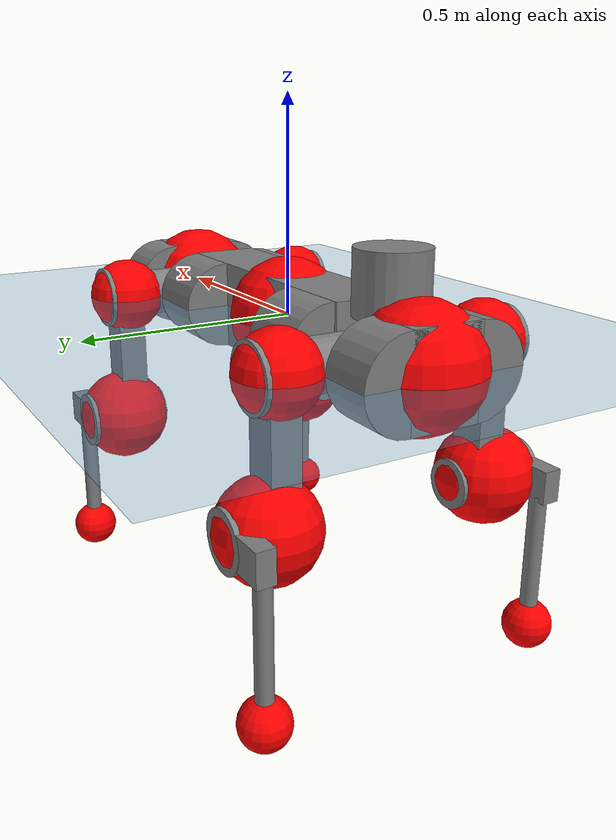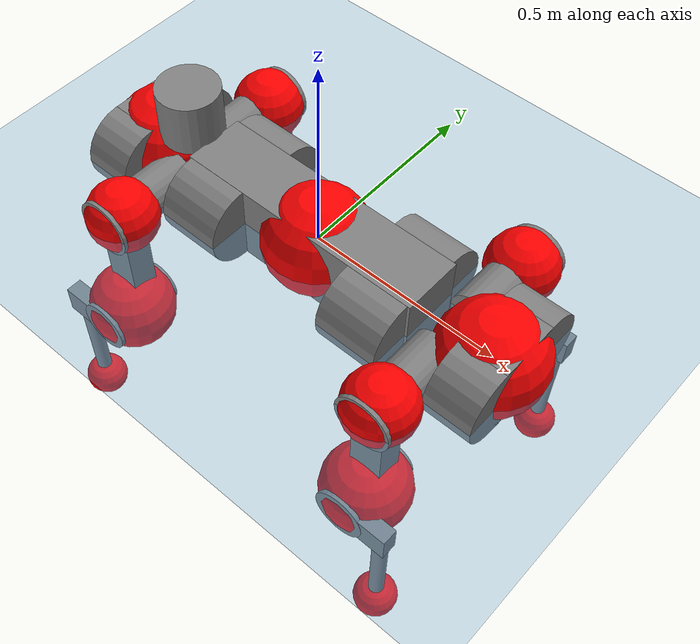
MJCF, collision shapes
<mujoco model="anymal_c">
  <compiler angle="radian" assetdir="assets" balanceinertia="true" inertiafromgeom="false"/>

  <option timestep="0.005" density="1.2" viscosity="2e-05"/>

  <size nkey="1"/>

  <visual>
    <quality shadowsize="8192"/>
    <map shadowclip="0.5"/>
  </visual>

  <default>
    <default class="/">
      <material specular="0" shininess="0.25"/>
      <geom contype="0" conaffinity="0" group="1" solref="-1000 -80"/>
      <site size="0.01 0.005 0.005" group="5"/>
      <general forcelimited="true" forcerange="-80 80" biastype="affine" gainprm="80" biasprm="0 -80 -2"/>
      <default class="anymal_c">
        <joint armature="0.01" damping="0.01" frictionloss="0.1"/>
        <default class="visual">
          <geom type="mesh" group="2"/>
          <default class="visual_zflip"/>
        </default>
        <default class="collision">
          <geom type="cylinder" group="3"/>
          <default class="foot">
            <geom size="0.03 0 0" type="sphere" condim="6" priority="1" friction="0.8 0.02 0.01" solimp="0.015 1 0.03"/>
          </default>
        </default>
      </default>
      <default class="reward_collision_sphere">
        <geom group="5" rgba="1 0 0 1"/>
      </default>
    </default>
  </default>

  <asset>
    <texture type="skybox" colorspace="auto" name="//unnamed_texture_0" builtin="gradient" rgb1="0.95 0.95 0.95" rgb2="0.95 0.95 0.95" width="100" height="600"/>
    <texture type="2d" colorspace="auto" name="texplane" builtin="checker" rgb1="0.345 0.575 0.748" rgb2="0.345 0.575 0.748" markrgb="1 1 1" width="512" height="512"/>
    <texture type="2d" colorspace="linear" name="base" file="base.png"/>
    <texture type="2d" colorspace="linear" name="top_shell" file="top_shell.png"/>
    <texture type="2d" colorspace="linear" name="bottom_shell" file="bottom_shell.png"/>
    <texture type="2d" colorspace="linear" name="remote" file="remote.png"/>
    <texture type="2d" colorspace="linear" name="hatch" file="hatch.png"/>
    <texture type="2d" colorspace="linear" name="handle" file="handle.png"/>
    <texture type="2d" colorspace="linear" name="face" file="face.png"/>
    <texture type="2d" colorspace="linear" name="battery" file="battery.png"/>
    <texture type="2d" colorspace="linear" name="lidar_cage" file="lidar_cage.png"/>
    <texture type="2d" colorspace="linear" name="depth_camera" file="depth_camera.png"/>
    <texture type="2d" colorspace="linear" name="wide_angle_camera" file="wide_angle_camera.png"/>
    <texture type="2d" colorspace="linear" name="lidar" file="lidar.png"/>
    <texture type="2d" colorspace="linear" name="drive" file="drive.png"/>
    <texture type="2d" colorspace="linear" name="hip_l" file="hip_l.png"/>
    <texture type="2d" colorspace="linear" name="shank_l" file="shank_l.png"/>
    <texture type="2d" colorspace="linear" name="foot" file="foot.png"/>
    <texture type="2d" colorspace="linear" name="thigh" file="thigh.png"/>
    <texture type="2d" colorspace="linear" name="shank_r" file="shank_r.png"/>
    <texture type="2d" colorspace="linear" name="hip_r" file="hip_r.png"/>
    <material name="MatPlane" class="/" texture="texplane" texuniform="true" texrepeat="2 2" specular="0.9" shininess="0.5"/>
    <material name="black_plastic" class="/" rgba="0.007 0.007 0.007 1"/>
    <material name="green" class="/" rgba="0.052 0.178 0.033 1"/>
    <material name="red" class="/" rgba="0.178 0.006 0.005 1"/>
    <material name="yellow" class="/" rgba="0.178 0.119 0.006 1"/>
    <material name="lwl" class="/" rgba="0.8 0.8 0.8 1"/>
    <material name="base" class="/" texture="base"/>
    <material name="top_shell" class="/" texture="top_shell"/>
    <material name="bottom_shell" class="/" texture="bottom_shell"/>
    <material name="hip_l" class="/" texture="hip_l"/>
    <material name="thigh" class="/" texture="thigh"/>
    <material name="shank_l" class="/" texture="shank_l"/>
    <material name="foot" class="/" texture="foot"/>
    <material name="hip_r" class="/" texture="hip_r"/>
    <material name="shank" class="/" texture="shank_r"/>
    <material name="hatch" class="/" texture="hatch"/>
    <material name="remote" class="/" texture="remote"/>
    <material name="handle" class="/" texture="handle"/>
    <material name="face" class="/" texture="face"/>
    <material name="depth_camera" class="/" texture="depth_camera"/>
    <material name="wide_angle_camera" class="/" texture="wide_angle_camera"/>
    <material name="battery" class="/" texture="battery"/>
    <material name="lidar_cage" class="/" texture="lidar_cage"/>
    <material name="lidar" class="/" texture="lidar"/>
    <material name="drive" class="/" texture="drive"/>
    <mesh name="base_0" class="/" file="base_0.obj"/>
    <mesh name="base_1" class="/" file="base_1.obj"/>
    <mesh name="base_2" class="/" file="base_2.obj"/>
    <mesh name="base_3" class="/" file="base_3.obj"/>
    <mesh name="base_4" class="/" file="base_4.obj"/>
    <mesh name="base_5" class="/" file="base_5.obj"/>
    <mesh name="top_shell" class="/" file="top_shell.obj"/>
    <mesh name="bottom_shell" class="/" file="bottom_shell.obj"/>
    <mesh name="remote" class="/" file="remote.obj"/>
    <mesh name="handle" class="/" file="handle.obj"/>
    <mesh name="face" class="/" file="face.obj"/>
    <mesh name="wide_angle_camera" class="/" file="wide_angle_camera.obj"/>
    <mesh name="depth_camera" class="/" file="depth_camera.obj"/>
    <mesh name="battery" class="/" file="battery.obj"/>
    <mesh name="lidar_cage" class="/" file="lidar_cage.obj"/>
    <mesh name="lidar" class="/" file="lidar.obj"/>
    <mesh name="drive" class="/" file="drive.obj"/>
    <mesh name="hip_l" class="/" file="hip_l.obj"/>
    <mesh name="thigh" class="/" file="thigh.obj"/>
    <mesh name="shank_l" class="/" file="shank_l.obj"/>
    <mesh name="foot" class="/" file="foot.obj"/>
    <mesh name="hip_r" class="/" file="hip_r.obj"/>
    <mesh name="hatch" class="/" file="hatch.obj"/>
    <mesh name="shank_r" class="/" file="shank_r.obj"/>
  </asset>

  <worldbody>
    <geom name="floor" class="/" size="100 100 0.125" type="plane" group="0" material="MatPlane"/>
    <light name="toplight_shadow" class="/" pos="0 0 5" dir="0.0990148 0.0990148 -0.990148" type="directional" ambient="0.04 0.04 0.04" diffuse="0.55 0.55 0.55" specular="0.12 0.12 0.12"/>
    <light name="toplight_fill" class="/" pos="0 0 5" dir="0.0990148 0.0990148 -0.990148" type="directional" castshadow="false" ambient="0.04 0.04 0.04" diffuse="0.3 0.3 0.3" specular="0.08 0.08 0.08"/>
    <body name="trunk" childclass="anymal_c" pos="1.15054e-05 -0.000984615 -6.55737e-05" quat="1 3.96326e-05 -4.91478e-05 -6.87622e-05">
      <inertial pos="0.0048317 -0.000462248 0.053294" quat="0.493927 0.495234 0.500908 0.509775" mass="28.0359" diaginertia="1.0332 1.40058 0.379454"/>
      <joint name="//unnamed_joint_0" type="free" armature="0" damping="0" frictionloss="0"/>
      <geom name="//unnamed_geom_1" class="visual" material="green" mesh="base_0"/>
      <geom name="//unnamed_geom_2" class="visual" material="yellow" mesh="base_1"/>
      <geom name="//unnamed_geom_3" class="visual" material="red" mesh="base_2"/>
      <geom name="//unnamed_geom_4" class="visual" material="black_plastic" mesh="base_3"/>
      <geom name="//unnamed_geom_5" class="visual" material="lwl" mesh="base_4"/>
      <geom name="//unnamed_geom_6" class="visual" material="base" mesh="base_5"/>
      <geom name="trunk_1" class="collision" size="0.330217 0.0797075 0.102481" type="box"/>
      <geom name="trunk_2" class="collision" size="0.102481 0.0825542" pos="0.240632 0.083426 0" quat="0.707107 0 0.707107 0"/>
      <geom name="trunk_3" class="collision" size="0.102481 0.0825542" pos="-0.240632 0.083426 0" quat="0.707107 0 0.707107 0"/>
      <geom name="trunk_4" class="collision" size="0.102481 0.0825542" pos="0.240632 -0.083426 0" quat="0.707107 0 0.707107 0"/>
      <geom name="trunk_5" class="collision" size="0.102481 0.0825542" pos="-0.240632 -0.083426 0" quat="0.707107 0 0.707107 0"/>
      <geom name="//unnamed_geom_12" class="visual" material="top_shell" mesh="top_shell"/>
      <geom name="//unnamed_geom_13" class="visual" material="bottom_shell" mesh="bottom_shell"/>
      <geom name="//unnamed_geom_14" class="visual" material="remote" mesh="remote"/>
      <geom name="//unnamed_geom_15" class="visual" material="handle" mesh="handle"/>
      <geom name="//unnamed_geom_16" class="visual" pos="0.458584 0 0" quat="1 0 0 0" material="face" mesh="face"/>
      <geom name="trunk_6" class="collision" size="0.0626273 0.0797075 0.102481" pos="0.519434 0 0" type="box"/>
      <geom name="//unnamed_geom_18" class="collision" size="0.102481 0.0626273" pos="0.519434 0.083426 0" quat="0.707107 0 0.707107 0"/>
      <geom name="//unnamed_geom_19" class="collision" size="0.102481 0.0626273" pos="0.519434 -0.083426 0" quat="0.707107 0 0.707107 0"/>
      <geom name="//unnamed_geom_20" class="visual" pos="0.510749 0 -0.0327297" quat="0.965926 0 0.258819 0" material="depth_camera" mesh="depth_camera"/>
      <geom name="//unnamed_geom_21" class="visual" pos="0.56756 0 0.0167347" material="wide_angle_camera" mesh="wide_angle_camera"/>
      <geom name="//unnamed_geom_22" class="visual_zflip" pos="-0.458584 0 0" quat="0 0 0 1" material="face" mesh="face"/>
      <geom name="trunk_7" class="collision" size="0.0626273 0.0797075 0.102481" pos="-0.519434 0 0" quat="0 0 0 1" type="box"/>
      <geom name="//unnamed_geom_24" class="collision" size="0.102481 0.0626273" pos="-0.519434 -0.083426 0" quat="0 -0.707107 0 0.707107"/>
      <geom name="//unnamed_geom_25" class="collision" size="0.102481 0.0626273" pos="-0.519434 0.083426 0" quat="0 -0.707107 0 0.707107"/>
      <geom name="//unnamed_geom_26" class="visual" pos="-0.510749 0 -0.0327297" quat="0 -0.258819 0 0.965926" material="depth_camera" mesh="depth_camera"/>
      <geom name="//unnamed_geom_27" class="visual_zflip" pos="-0.56756 0 0.0167347" quat="0 0 0 1" material="wide_angle_camera" mesh="wide_angle_camera"/>
      <geom name="//unnamed_geom_28" class="visual" material="battery" mesh="battery"/>
      <geom name="//unnamed_geom_29" class="visual" pos="0 0.0922467 0.0323869" quat="0.683013 -0.183013 0.183013 0.683013" material="depth_camera" mesh="depth_camera"/>
      <geom name="//unnamed_geom_30" class="visual" pos="0 -0.0922467 0.0323869" quat="0.683013 0.183013 0.183013 -0.683013" material="depth_camera" mesh="depth_camera"/>
      <geom name="//unnamed_geom_31" class="visual" pos="-0.402713 0 0.0821643" quat="1 0 0 0" material="lidar_cage" mesh="lidar_cage"/>
      <geom name="trunk_8" class="collision" size="0.0797075 0.0683207" pos="-0.402713 0 0.149237"/>
      <geom name="//unnamed_geom_33" class="visual" pos="-0.402713 3.35691e-05 0.158963" quat="0.707107 0 0 -0.707107" material="lidar" mesh="lidar"/>
      <geom name="//unnamed_geom_34" class="visual" pos="0.331796 0.123921 1.27511e-09" quat="0.258819 0.965926 0 0" material="drive" mesh="drive"/>
      <geom name="//unnamed_geom_35" class="visual" pos="0.331796 -0.123921 -1.27511e-09" quat="0.258819 -0.965926 0 0" material="drive" mesh="drive"/>
      <geom name="//unnamed_geom_36" class="visual" pos="-0.331796 0.123921 -1.27511e-09" quat="0 0 0.965926 -0.258819" material="drive" mesh="drive"/>
      <geom name="//unnamed_geom_37" class="visual" pos="-0.331796 -0.123921 1.27511e-09" quat="0 0 -0.965926 -0.258819" material="drive" mesh="drive"/>
      <geom name="//unnamed_geom_38" class="visual" pos="0.128337 0 0.0816053" quat="1 0 0 0" material="hatch" mesh="hatch"/>
      <geom name="//unnamed_geom_39" class="reward_collision_sphere" size="0.136641"/>
      <geom name="//unnamed_geom_40" class="reward_collision_sphere" size="0.136641" pos="0.49786 0 0"/>
      <geom name="//unnamed_geom_41" class="reward_collision_sphere" size="0.136641" pos="-0.49786 0 0"/>
      <site name="imu" pos="0.281227 0.0217655 0.0467613" size="0.0113868"/>
      <camera name="track" pos="0 -2.3836 0" quat="0.707107 0.707107 0 0" mode="trackcom"/>
      <camera name="ego_camera" pos="0.49786 0 -0.0447153" quat="-0.5 -0.5 0.5 0.5"/>
      <body name="LF_HIP" pos="0.333934 0.12181 -0.00041165" quat="0.258691 0.96596 0.000117155 -0.000323184">
        <inertial pos="0.0619183 -0.0178163 -0.00655296" quat="-0.127731 0.710418 -0.134521 0.678893" mass="4.10002" diaginertia="0.00971841 0.0118746 0.00567928"/>
        <joint name="LF_HAA" pos="0 0 0" axis="0.999993 0.000974718 -0.00370323" range="-0.768474 0.539086" armature="0.0117141" damping="0.00381935" frictionloss="0.1241"/>
        <geom name="//unnamed_geom_42" class="visual" pos="0 7.5009e-05 -1.23202e-05" quat="0.258819 -0.965926 0 0" material="hip_l" mesh="hip_l"/>
        <geom name="//unnamed_geom_43" class="visual" pos="0.0662707 -0.0813998 -0.0464494" quat="0.183013 -0.683013 0.683013 0.183013" material="drive" mesh="drive"/>
        <geom name="//unnamed_geom_44" class="collision" size="0.0569339 0.0797075" pos="0.0662707 -0.0142537 -0.00771897" quat="-0.353553 -0.612372 0.612372 -0.353553"/>
        <body name="LF_THIGH" pos="0.0666578 -0.0887247 -0.0485401" quat="0.183392 -0.683425 0.682512 0.182962">
          <inertial pos="0.0357034 0.00225312 -0.273614" quat="0.993167 -0.0052059 -0.0805647 0.0842751" mass="4.53317" diaginertia="0.049686 0.0714113 0.00700521"/>
          <joint name="LF_HFE" pos="0 0 0" axis="0.999993 -0.000279529 -0.00368231" stiffness="0.00549949" range="-3.09182 3.12288" armature="0.0117282" damping="0.0202339" frictionloss="0.129416"/>
          <geom name="//unnamed_geom_45" class="visual" pos="-0.00170002 -2.67884e-06 0" quat="0.707107 0 0 -0.707107" material="thigh" mesh="thigh"/>
          <geom name="//unnamed_geom_46" class="collision" size="0.0740141 0.0455472" pos="0.0442542 0 0" quat="0.5 0.5 -0.5 -0.5"/>
          <geom name="//unnamed_geom_47" class="collision" size="0.0427005 0.0341604 0.160911" pos="0.0331907 0 -0.157972" quat="0.707107 0 0 -0.707107" type="box"/>
          <geom name="//unnamed_geom_48" class="visual" pos="0.110967 0 -0.318596" quat="1 0 0 0" material="drive" mesh="drive"/>
          <geom name="//unnamed_geom_49" class="collision" size="0.0569339 0.0797075" pos="0.0335226 0 -0.318596" quat="0.707107 0 0.707107 0"/>
          <geom name="//unnamed_geom_50" class="reward_collision_sphere" size="0.0910943" pos="0.0276589 0 0"/>
          <body name="LF_SHANK" pos="0.108158 0.000758135 -0.321558" quat="0.999999 -0.000405009 0.000838727 0.000871898">
            <inertial pos="0.00800345 -0.073143 -0.0883913" quat="0.992909 -0.116084 -0.00123303 -0.0256039" mass="0.861278" diaginertia="0.0165854 0.0218494 0.00198608"/>
            <joint name="LF_KFE" pos="0 0 0" axis="0.999983 0.00058076 -0.00579475" stiffness="0.000482393" range="-3.10755 3.12847" armature="0.0102549" damping="0.00843814" frictionloss="0.111179"/>
            <geom name="//unnamed_geom_51" class="visual" pos="-0.000554341 -0.00295577 0" quat="0.707107 0 0 -0.707107" material="shank_l" mesh="shank_l"/>
            <geom name="LF_kfe_act" class="collision" size="0.0683207 0.0227736" pos="0.0221271 0 0" quat="0.5 0.5 -0.5 -0.5"/>
            <geom name="//unnamed_geom_53" class="collision" size="0.0654729 0.0384304 0.0216349" pos="0.0221271 -0.0685273 0" quat="0.5 0.5 -0.5 -0.5" type="box"/>
            <geom name="//unnamed_geom_54" class="visual" pos="0.0144381 -0.105771 -0.37781" quat="0.382683 0 0 -0.92388" material="foot" mesh="foot"/>
            <geom name="LF_calf" class="collision" size="0.0199269 0.160841" pos="0.0144379 -0.104819 -0.188905" quat="0.707107 0 0 -0.707107"/>
            <geom name="LF_foot" class="foot" size="0.0305362" pos="0.0144379 -0.104819 -0.352658" quat="0.707107 0 0 -0.707107"/>
            <geom name="//unnamed_geom_57" class="reward_collision_sphere" size="0.113868" pos="-0.0553178 0 0"/>
            <geom name="//unnamed_geom_58" class="reward_collision_sphere" size="0.0569339" pos="0.0144379 -0.104819 -0.352658"/>
            <site name="LF_foot" class="foot" pos="0.0144379 -0.104819 -0.352658" quat="0.707107 0 0 -0.707107" size="0.0113868"/>
          </body>
        </body>
      </body>
      <body name="RF_HIP" pos="0.331156 -0.125632 -0.00295281" quat="0.25881 -0.965928 5.09798e-05 -5.37242e-05">
        <inertial pos="0.0601538 0.0207104 -0.00726015" quat="0.138186 0.678752 0.12867 0.70968" mass="4.09753" diaginertia="0.00937931 0.0121674 0.0057826"/>
        <joint name="RF_HAA" pos="0 0 0" axis="0.999946 0.00883387 0.00556117" range="-0.499137 0.73702" armature="0.012768" damping="0.0240819" frictionloss="0.129015"/>
        <geom name="//unnamed_geom_59" class="visual" pos="0 -7.50084e-05 -1.23201e-05" quat="0.258819 0.965926 0 0" material="hip_r" mesh="hip_r"/>
        <geom name="//unnamed_geom_60" class="visual" pos="0.0662707 0.0813998 -0.0464494" quat="0.183013 0.683013 0.683013 -0.183013" material="drive" mesh="drive"/>
        <geom name="//unnamed_geom_61" class="collision" size="0.0569339 0.0797075" pos="0.0662707 0.0142537 -0.00771897" quat="-0.353553 0.612372 0.612372 0.353553"/>
        <body name="RF_THIGH" pos="0.0655173 0.0839034 -0.0442241" quat="0.181806 0.683731 0.682866 -0.182079">
          <inertial pos="0.0315563 0.00207393 -0.273804" quat="0.993094 -0.00744378 -0.0860551 0.0793973" mass="4.64591" diaginertia="0.0502646 0.0720768 0.00709532"/>
          <joint name="RF_HFE" pos="0 0 0" axis="0.999998 0.000770494 0.00208937" range="-3.12087 3.14416" armature="0.0115416" damping="0.0233896" frictionloss="0.11461"/>
          <geom name="//unnamed_geom_62" class="visual" pos="-0.00170002 -2.67884e-06 0" quat="0.707107 0 0 -0.707107" material="thigh" mesh="thigh"/>
          <geom name="//unnamed_geom_63" class="collision" size="0.0740141 0.0455472" pos="0.0442542 0 0" quat="0.5 0.5 0.5 0.5"/>
          <geom name="//unnamed_geom_64" class="collision" size="0.0427005 0.0341604 0.160911" pos="0.0331907 0 -0.157972" quat="0.707107 0 0 0.707107" type="box"/>
          <geom name="//unnamed_geom_65" class="visual" pos="0.110967 0 -0.318596" quat="1 0 0 0" material="drive" mesh="drive"/>
          <geom name="//unnamed_geom_66" class="collision" size="0.0569339 0.0797075" pos="0.0335226 0 -0.318596" quat="0.707107 0 0.707107 0"/>
          <geom name="//unnamed_geom_67" class="reward_collision_sphere" size="0.0910943" pos="0.0276589 0 0"/>
          <body name="RF_SHANK" pos="0.111741 0.000965099 -0.320643" quat="1 3.70891e-06 -2.82156e-05 -4.65203e-05">
            <inertial pos="0.00898377 0.0733183 -0.0883724" quat="0.992757 0.114718 0.00180673 0.0356479" mass="0.865302" diaginertia="0.0172115 0.0222683 0.00201177"/>
            <joint name="RF_KFE" pos="0 0 0" axis="0.999973 -0.00488523 0.00546673" range="-3.10024 3.13045" armature="0.010902" damping="0.00416682" frictionloss="0.112898"/>
            <geom name="//unnamed_geom_68" class="visual" pos="-0.000554338 0.00295577 0" quat="0.707107 0 0 0.707107" material="shank" mesh="shank_r"/>
            <geom name="RF_kfe_act" class="collision" size="0.0683207 0.0227736" pos="0.0221271 0 0" quat="0.5 0.5 0.5 0.5"/>
            <geom name="//unnamed_geom_70" class="collision" size="0.0654729 0.0384304 0.0216349" pos="0.0221271 0.0685273 0" quat="0.5 0.5 0.5 0.5" type="box"/>
            <geom name="//unnamed_geom_71" class="visual" pos="0.0144378 0.105771 -0.37781" quat="0.382683 0 0 0.92388" material="foot" mesh="foot"/>
            <geom name="RF_calf" class="collision" size="0.0199269 0.160841" pos="0.0144379 0.104819 -0.188905" quat="0.707107 0 0 0.707107"/>
            <geom name="RF_foot" class="foot" size="0.0267969" pos="0.0144379 0.104819 -0.352658" quat="0.707107 0 0 0.707107"/>
            <geom name="//unnamed_geom_74" class="reward_collision_sphere" size="0.113868" pos="-0.0553178 0 0"/>
            <geom name="//unnamed_geom_75" class="reward_collision_sphere" size="0.0569339" pos="0.0144379 0.104819 -0.352658"/>
            <site name="RF_foot" class="foot" pos="0.0144379 0.104819 -0.352658" quat="0.707107 0 0 0.707107" size="0.0113868"/>
          </body>
        </body>
      </body>
      <body name="LH_HIP" pos="-0.32972 0.124348 0.00385575" quat="-0.000983092 -0.000720514 0.965664 -0.259791">
        <inertial pos="0.0622997 0.0176379 -0.00686601" quat="0.141852 0.682674 0.135374 0.703923" mass="4.37377" diaginertia="0.0100874 0.0122113 0.00595873"/>
        <joint name="LH_HAA" pos="0 0 0" axis="0.999962 0.00339378 0.00803115" range="-0.459008 0.668563" armature="0.0117418" damping="0.00474467" frictionloss="0.123082"/>
        <geom name="//unnamed_geom_76" class="visual" pos="0 -7.50084e-05 -1.23201e-05" quat="-0.258819 -0.965926 0 0" material="hip_r" mesh="hip_r"/>
        <geom name="//unnamed_geom_77" class="visual" pos="0.0662707 0.0813998 -0.0464494" quat="0.183013 0.683013 0.683013 -0.183013" material="drive" mesh="drive"/>
        <geom name="//unnamed_geom_78" class="collision" size="0.0569339 0.0797075" pos="0.0662707 0.0142537 -0.00771897" quat="-0.353553 0.612372 0.612372 0.353553"/>
        <body name="LH_THIGH" pos="0.063838 0.0878763 -0.0449355" quat="0.182693 0.683937 0.682213 -0.182865">
          <inertial pos="0.0338014 -0.000485992 -0.273364" quat="0.993082 -0.0079895 -0.0864152 0.0791047" mass="4.54919" diaginertia="0.0503488 0.0768154 0.00755415"/>
          <joint name="LH_HFE" pos="0 0 0" axis="1 0.00012203 0.000336489" range="-3.16047 3.18223" armature="0.00996066" damping="0.00598905" frictionloss="0.113708"/>
          <geom name="//unnamed_geom_79" class="visual" pos="-0.00170002 -2.67884e-06 0" quat="0.707107 0 0 -0.707107" material="thigh" mesh="thigh"/>
          <geom name="//unnamed_geom_80" class="collision" size="0.0740141 0.0455472" pos="0.0442542 0 0" quat="0.5 0.5 -0.5 -0.5"/>
          <geom name="//unnamed_geom_81" class="collision" size="0.0427005 0.0341604 0.160911" pos="0.0331907 0 -0.157972" quat="0.707107 0 0 -0.707107" type="box"/>
          <geom name="//unnamed_geom_82" class="visual" pos="0.110967 0 -0.318596" quat="1 0 0 0" material="drive" mesh="drive"/>
          <geom name="//unnamed_geom_83" class="collision" size="0.0569339 0.0797075" pos="0.0335226 0 -0.318596" quat="0.707107 0 0.707107 0"/>
          <geom name="//unnamed_geom_84" class="reward_collision_sphere" size="0.0910943" pos="0.0276589 0 0"/>
          <body name="LH_SHANK" pos="0.108986 0.00253119 -0.315798" quat="0.999999 0.000761346 0.000800643 -0.000554535">
            <inertial pos="0.00615999 0.072779 -0.0911696" quat="0.993018 0.114625 -0.00355519 0.0276218" mass="0.91647" diaginertia="0.0173028 0.0230126 0.00201846"/>
            <joint name="LH_KFE" pos="0 0 0" axis="0.999958 -0.00215223 -0.00887053" range="-3.17843 3.11795" armature="0.0107769" damping="0" frictionloss="0.118845"/>
            <geom name="//unnamed_geom_85" class="visual" pos="-0.000554338 0.00295577 0" quat="-0.707107 0 0 -0.707107" material="shank" mesh="shank_r"/>
            <geom name="LH_kfe_act" class="collision" size="0.0683207 0.0227736" pos="0.0221271 0 0" quat="0.5 0.5 -0.5 -0.5"/>
            <geom name="//unnamed_geom_87" class="collision" size="0.0654729 0.0384304 0.0216349" pos="0.0221271 0.0685273 0" quat="0.5 0.5 -0.5 -0.5" type="box"/>
            <geom name="//unnamed_geom_88" class="visual" pos="0.0144378 0.105771 -0.37781" quat="-0.382683 0 0 -0.92388" material="foot" mesh="foot"/>
            <geom name="LH_calf" class="collision" size="0.0199269 0.160841" pos="0.0144379 0.104819 -0.188905" quat="0.707107 0 0 -0.707107"/>
            <geom name="LH_foot" class="foot" size="0.0384085" pos="0.0144379 0.104819 -0.352658" quat="0.707107 0 0 -0.707107"/>
            <geom name="//unnamed_geom_91" class="reward_collision_sphere" size="0.113868" pos="-0.0553178 0 0"/>
            <geom name="//unnamed_geom_92" class="reward_collision_sphere" size="0.0569339" pos="0.0144379 0.104819 -0.352658"/>
            <site name="LH_foot" class="foot" pos="0.0144379 0.104819 -0.352658" quat="0.707107 0 0 -0.707107" size="0.0113868"/>
          </body>
        </body>
      </body>
      <body name="RH_HIP" pos="-0.329352 -0.126405 -0.00155394" quat="1.77334e-05 -0.000238207 -0.965934 -0.258787">
        <inertial pos="0.064973 -0.0180552 -0.0112696" quat="-0.132524 0.703227 -0.14034 0.684261" mass="4.1814" diaginertia="0.0101372 0.0125838 0.00585419"/>
        <joint name="RH_HAA" pos="0 0 0" axis="0.999999 -0.00107191 -0.000306232" stiffness="0.00901948" range="-0.738957 0.505445" armature="0.0113738" damping="0.00440226" frictionloss="0.115286"/>
        <geom name="//unnamed_geom_93" class="visual" pos="0 7.5009e-05 -1.23202e-05" quat="-0.258819 0.965926 0 0" material="hip_l" mesh="hip_l"/>
        <geom name="//unnamed_geom_94" class="visual" pos="0.0662707 -0.0813998 -0.0464494" quat="-0.183013 0.683013 -0.683013 -0.183013" material="drive" mesh="drive"/>
        <geom name="//unnamed_geom_95" class="collision" size="0.0569339 0.0797075" pos="0.0662707 -0.0142537 -0.00771897" quat="0.353553 0.612372 -0.612372 0.353553"/>
        <body name="RH_THIGH" pos="0.0650158 -0.0853131 -0.045704" quat="-0.18273 0.68293 -0.683143 -0.183117">
          <inertial pos="0.0343306 0.000625043 -0.272339" quat="0.99258 -0.0125284 -0.0807569 0.0900372" mass="4.36296" diaginertia="0.048652 0.0690608 0.00711426"/>
          <joint name="RH_HFE" pos="0 0 0" axis="0.999996 -0.00260895 0.00129059" range="-3.11097 3.19084" armature="0.0118098" damping="0.00537323" frictionloss="0.12197"/>
          <geom name="//unnamed_geom_96" class="visual" pos="-0.00170002 -2.67884e-06 0" quat="0.707107 0 0 -0.707107" material="thigh" mesh="thigh"/>
          <geom name="//unnamed_geom_97" class="collision" size="0.0740141 0.0455472" pos="0.0442542 0 0" quat="0.5 0.5 0.5 0.5"/>
          <geom name="//unnamed_geom_98" class="collision" size="0.0427005 0.0341604 0.160911" pos="0.0331907 0 -0.157972" quat="0.707107 0 0 0.707107" type="box"/>
          <geom name="//unnamed_geom_99" class="visual" pos="0.110967 0 -0.318596" quat="1 0 0 0" material="drive" mesh="drive"/>
          <geom name="//unnamed_geom_100" class="collision" size="0.0569339 0.0797075" pos="0.0335226 0 -0.318596" quat="0.707107 0 0.707107 0"/>
          <geom name="//unnamed_geom_101" class="reward_collision_sphere" size="0.0910943" pos="0.0276589 0 0"/>
          <body name="RH_SHANK" pos="0.114253 0.00271841 -0.316411" quat="0.999999 0.00062985 -0.000771187 0.00103177">
            <inertial pos="0.00360061 -0.0728522 -0.0926425" quat="0.993704 -0.10645 0.00130173 -0.0349246" mass="0.86638" diaginertia="0.016562 0.0213341 0.00197761"/>
            <joint name="RH_KFE" pos="0 0 0" axis="0.999993 0.00275952 -0.00266102" range="-3.14352 3.1203" armature="0.0116943" damping="0.00845012" frictionloss="0.110057"/>
            <geom name="//unnamed_geom_102" class="visual" pos="-0.000554341 -0.00295577 0" quat="0.707107 0 0 -0.707107" material="shank_l" mesh="shank_l"/>
            <geom name="RH_kfe_act" class="collision" size="0.0683207 0.0227736" pos="0.0221271 0 0" quat="0.5 0.5 0.5 0.5"/>
            <geom name="//unnamed_geom_104" class="collision" size="0.0654729 0.0384304 0.0216349" pos="0.0221271 -0.0685273 0" quat="0.5 0.5 0.5 0.5" type="box"/>
            <geom name="//unnamed_geom_105" class="visual" pos="0.0144381 -0.105771 -0.37781" quat="0.382683 0 0 -0.92388" material="foot" mesh="foot"/>
            <geom name="RH_calf" class="collision" size="0.0199269 0.160841" pos="0.0144379 -0.104819 -0.188905" quat="0.707107 0 0 0.707107"/>
            <geom name="RH_foot" class="foot" size="0.029095" pos="0.0144379 -0.104819 -0.352658" quat="0.707107 0 0 0.707107"/>
            <geom name="//unnamed_geom_108" class="reward_collision_sphere" size="0.113868" pos="-0.0553178 0 0"/>
            <geom name="//unnamed_geom_109" class="reward_collision_sphere" size="0.0569339" pos="0.0144379 -0.104819 -0.352658"/>
            <site name="RH_foot" class="foot" pos="0.0144379 -0.104819 -0.352658" quat="0.707107 0 0 0.707107" size="0.0113868"/>
          </body>
        </body>
      </body>
    </body>
  </worldbody>

  <contact>
    <pair class="/" geom1="floor" geom2="LF_foot" name="//unnamed_contact_0"/>
    <pair class="/" geom1="floor" geom2="RF_foot" name="//unnamed_contact_1"/>
    <pair class="/" geom1="floor" geom2="LH_foot" name="//unnamed_contact_2"/>
    <pair class="/" geom1="floor" geom2="RH_foot" name="//unnamed_contact_3"/>
  </contact>

  <actuator>
    <general name="LF_HAA" class="/" joint="LF_HAA" forcerange="-82.8015 82.8015" gainprm="89.6609" biasprm="0 -89.6609 -2.44377"/>
    <general name="LF_HFE" class="/" joint="LF_HFE" forcerange="-84.3515 84.3515" gainprm="89.6609" biasprm="0 -89.6609 -2.44377"/>
    <general name="LF_KFE" class="/" joint="LF_KFE" forcerange="-84.649 84.649" gainprm="89.6609" biasprm="0 -89.6609 -2.44377"/>
    <general name="RF_HAA" class="/" joint="RF_HAA" forcerange="-88.0278 88.0278" gainprm="89.6609" biasprm="0 -89.6609 -2.44377"/>
    <general name="RF_HFE" class="/" joint="RF_HFE" forcerange="-88.3834 88.3834" gainprm="89.6609" biasprm="0 -89.6609 -2.44377"/>
    <general name="RF_KFE" class="/" joint="RF_KFE" forcerange="-97.6317 97.6317" gainprm="89.6609" biasprm="0 -89.6609 -2.44377"/>
    <general name="LH_HAA" class="/" joint="LH_HAA" forcerange="-87.4301 87.4301" gainprm="89.6609" biasprm="0 -89.6609 -2.44377"/>
    <general name="LH_HFE" class="/" joint="LH_HFE" forcerange="-97.7297 97.7297" gainprm="89.6609" biasprm="0 -89.6609 -2.44377"/>
    <general name="LH_KFE" class="/" joint="LH_KFE" forcerange="-84.0518 84.0518" gainprm="89.6609" biasprm="0 -89.6609 -2.44377"/>
    <general name="RH_HAA" class="/" joint="RH_HAA" forcerange="-96.4315 96.4315" gainprm="89.6609" biasprm="0 -89.6609 -2.44377"/>
    <general name="RH_HFE" class="/" joint="RH_HFE" forcerange="-89.4291 89.4291" gainprm="89.6609" biasprm="0 -89.6609 -2.44377"/>
    <general name="RH_KFE" class="/" joint="RH_KFE" forcerange="-92.3146 92.3146" gainprm="89.6609" biasprm="0 -89.6609 -2.44377"/>
  </actuator>

  <sensor>
    <gyro site="imu" name="imu_angular_velocity"/>
    <velocimeter site="imu" name="imu_linear_velocity"/>
    <framelinvel objtype="site" objname="LF_foot" name="LF_foot_global_linear_velocity"/>
    <framelinvel objtype="site" objname="RF_foot" name="RF_foot_global_linear_velocity"/>
    <framelinvel objtype="site" objname="LH_foot" name="LH_foot_global_linear_velocity"/>
    <framelinvel objtype="site" objname="RH_foot" name="RH_foot_global_linear_velocity"/>
  </sensor>

  <keyframe>
    <key name="home" qpos="0 0 0.55 1 0 0 0 0 0.4 -0.8 0 -0.4 0.8 0 -0.4 0.8 0 0.4 -0.8"/>
  </keyframe>
</mujoco>
